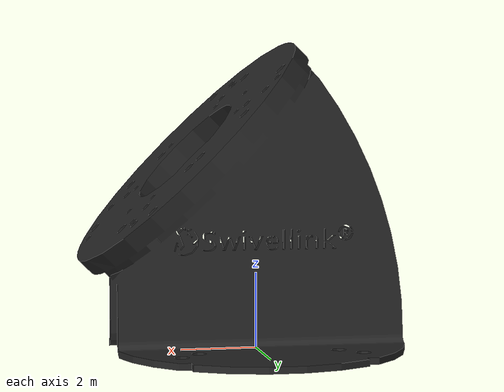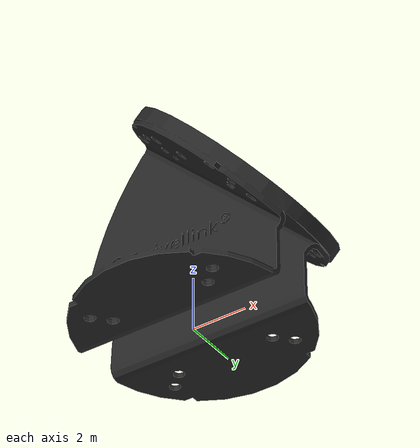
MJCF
<mujoco model="arm_mount_swivellink_new">
  <default>
    <default class="visual">
      <geom group="2" type="mesh" contype="0" conaffinity="0"/>
    </default>
    <default class="collision">
      <geom group="3" type="mesh"/>
    </default>
  </default>
  <asset>
    <material name="mtl_arm_mount_swivellink_new" specular="0.20000000000000004" shininess="1.0" rgba="0.14901961 0.14901961 0.14901961 1.0"/>
    <mesh file="arm_mount_swivellink_new.obj"/>
  </asset>
  <worldbody>
    <body name="arm_mount_swivellink_new">
      <geom material="mtl_arm_mount_swivellink_new" mesh="arm_mount_swivellink_new" class="visual"/>
      <geom mesh="arm_mount_swivellink_new" class="collision"/>
    </body>
  </worldbody>
</mujoco>
